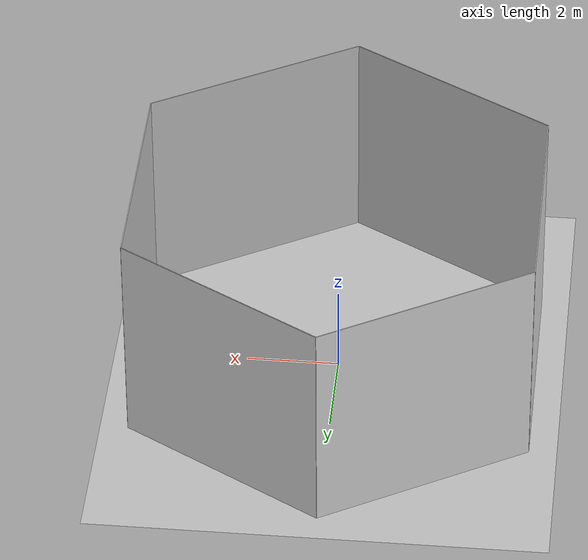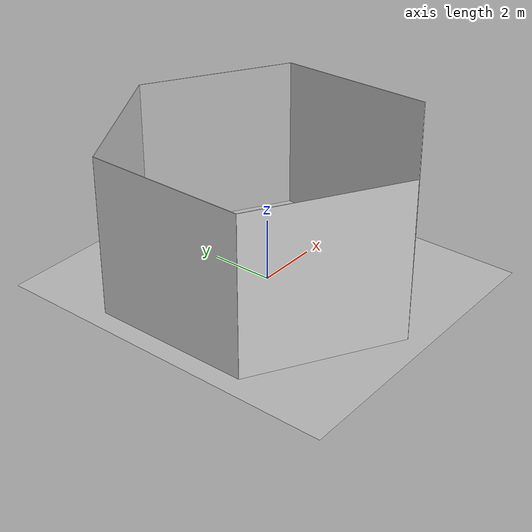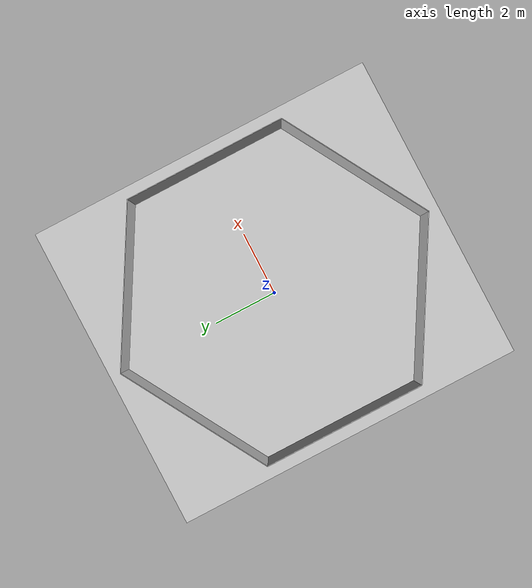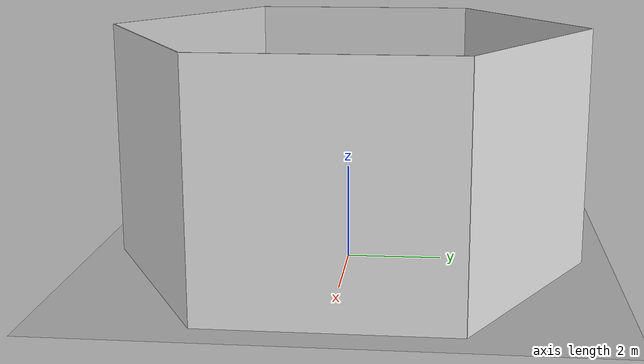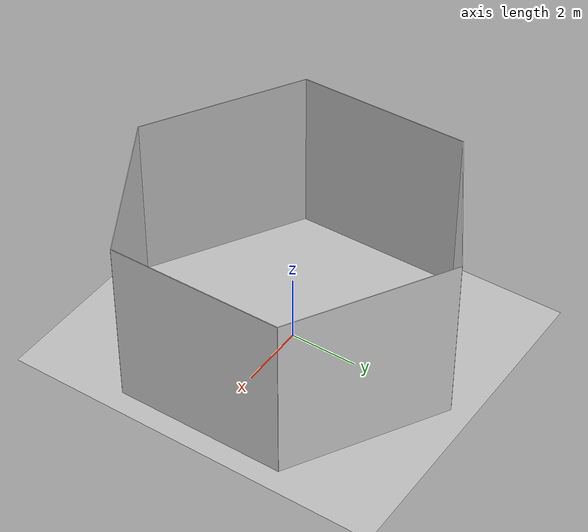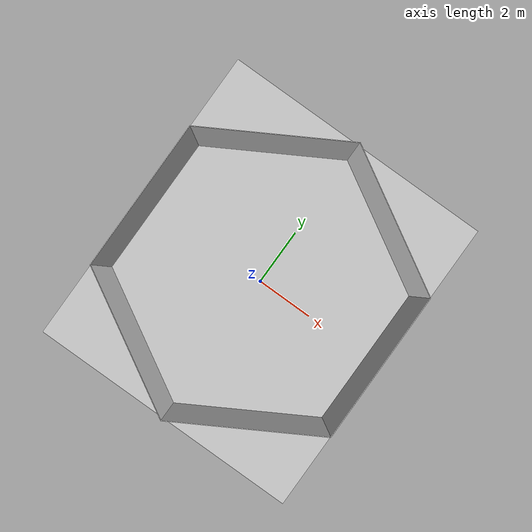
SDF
<?xml version="1.0"?>
<sdf version="1.4">
  <world name="target">
    <include>
      <uri>model://ground_plane</uri>
    </include>
    <include>
      <uri>model://sun</uri>
    </include>

    <light name="inner_point_white1" type="point">
      <pose>0 0 6 0 0 0</pose>
      <diffuse>0.5 0.5 0.5 1</diffuse>
      <specular>0.1 0.1 0.1 1</specular>
      <attenuation>
        <range>20</range>
        <linear>0.1</linear>
        <constant>0.2</constant>
        <quadratic>0</quadratic>
      </attenuation>
      <cast_shadows>0</cast_shadows>
      <direction>0 0 -1</direction>
    </light>
    <model name="targetN">
      <pose>4.3301 0 2.5  1.5708 0 -1.5708</pose>
        <static>true</static>
        <link name="body">
          <visual name="visual">
            <geometry>
              <mesh>
                <uri>model://full_target.dae</uri>
                <scale> 0.01 0.01 0.01 </scale>
              </mesh>
            </geometry>
          </visual>
          <collision name="collision">
            <geometry>
              <mesh>
                <uri>model://full_target.dae</uri>
                <scale> 0.01 0.01 0.01 </scale>
              </mesh>
            </geometry>
          </collision>
        </link>
    </model>
    <model name="targetNE">
      <pose>2.165 3.750 2.5  1.5708 0 -0.5236</pose>
        <static>true</static>
        <link name="body">
          <visual name="visual">
            <geometry>
              <mesh>
                <uri>model://full_target.dae</uri>
                <scale> 0.01 0.01 0.01 </scale>
              </mesh>
            </geometry>
          </visual>
           <collision name="collision">
            <geometry>
              <mesh>
                <uri>model://full_target.dae</uri>
                <scale> 0.01 0.01 0.01 </scale>
              </mesh>
            </geometry>
          </collision>
        </link>
    </model>

    <model name="targetSE">
      <pose>-2.165 3.750 2.5  1.5708 0 0.5236</pose>
      <static>true</static>
      <link name="body">
        <visual name="visual">
          <geometry>
            <mesh>
              <uri>model://full_target.dae</uri>
              <scale> 0.01 0.01 0.01 </scale>
            </mesh>
          </geometry>
        </visual>
         <collision name="collision">
            <geometry>
              <mesh>
                <uri>model://full_target.dae</uri>
                <scale> 0.01 0.01 0.01 </scale>
              </mesh>
            </geometry>
          </collision>
      </link>
    </model>
    <model name="targetS">
      <pose>-4.3301 0 2.5  1.5708 0 1.5708</pose>
      <static>true</static>
      <link name="body">
        <visual name="visual">
          <geometry>
            <mesh>
              <uri>model://full_target.dae</uri>
              <scale> 0.01 0.01 0.01 </scale>
            </mesh>
          </geometry>
        </visual>
         <collision name="collision">
            <geometry>
              <mesh>
                <uri>model://full_target.dae</uri>
                <scale> 0.01 0.01 0.01 </scale>
              </mesh>
            </geometry>
          </collision>
      </link>
    </model>
    <model name="targetSW">
      <pose>-2.165 -3.750 2.5  1.5708 0 -3.6652</pose>
      <static>true</static>
      <link name="body">
        <visual name="visual">
          <geometry>
            <mesh>
              <uri>model://full_target.dae</uri>
              <scale> 0.01 0.01 0.01 </scale>
            </mesh>
          </geometry>
        </visual>
         <collision name="collision">
            <geometry>
              <mesh>
                <uri>model://full_target.dae</uri>
                <scale> 0.01 0.01 0.01 </scale>
              </mesh>
            </geometry>
          </collision>
      </link>
    </model>

    <model name="targetNW">
      <pose>2.165 -3.750 2.5  1.5708 0 3.6652</pose>
      <static>true</static>
      <link name="body">
        <visual name="visual">
          <geometry>
            <mesh>
              <uri>model://full_target.dae</uri>
              <scale> 0.01 0.01 0.01 </scale>
            </mesh>
          </geometry>
        </visual>
         <collision name="collision">
            <geometry>
              <mesh>
                <uri>model://full_target.dae</uri>
                <scale> 0.01 0.01 0.01 </scale>
              </mesh>
            </geometry>
          </collision>
      </link>
    </model>

  </world>
</sdf>
